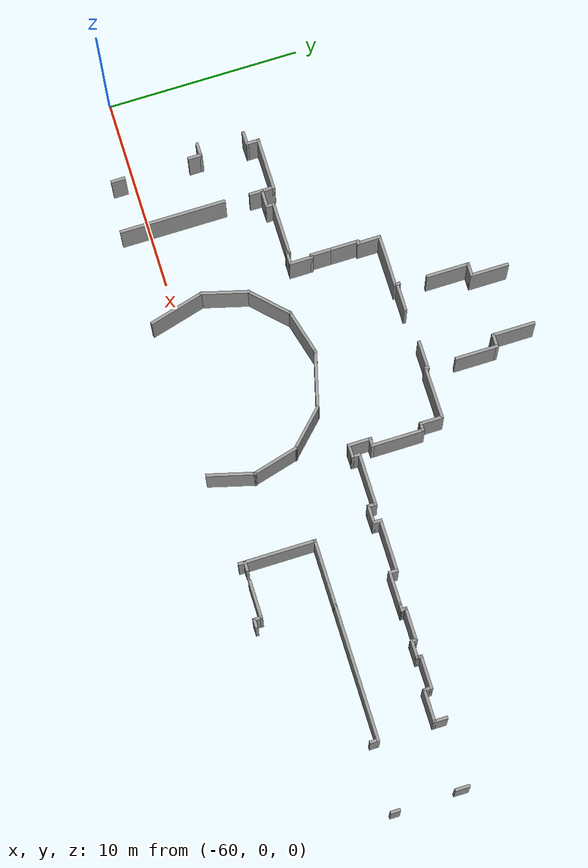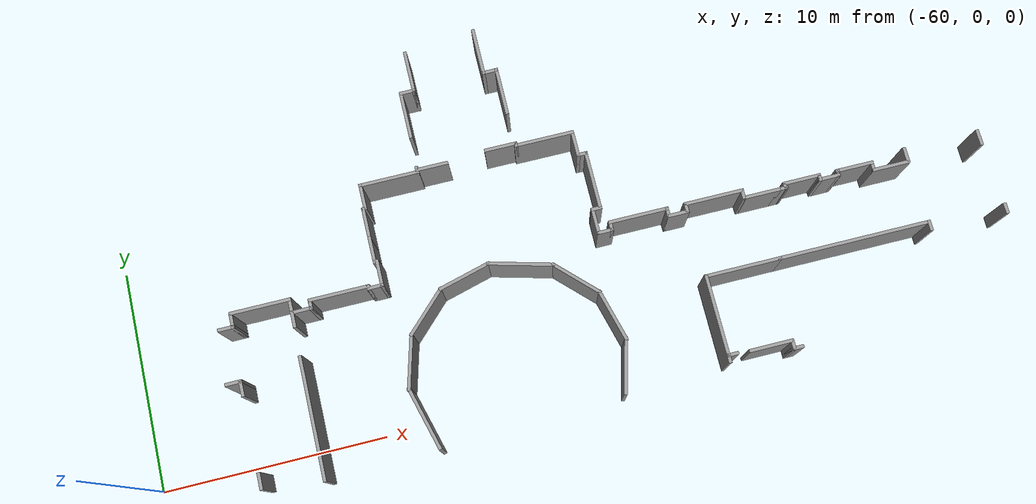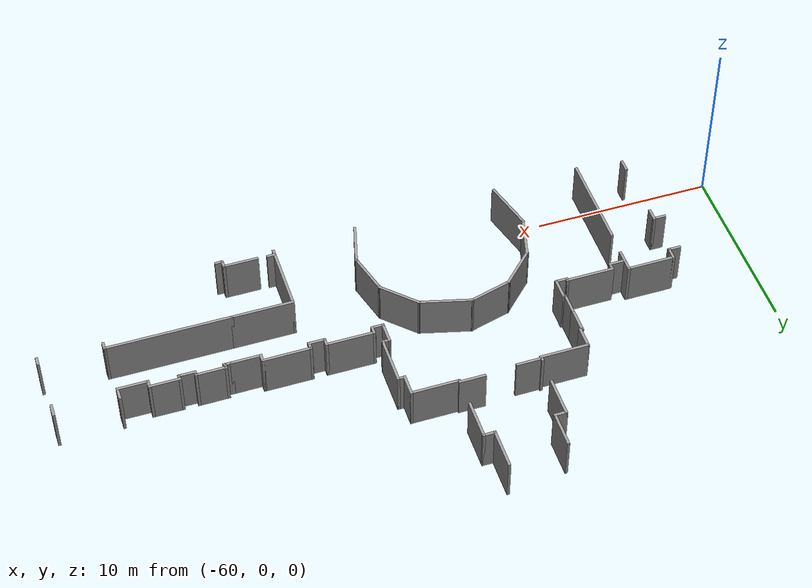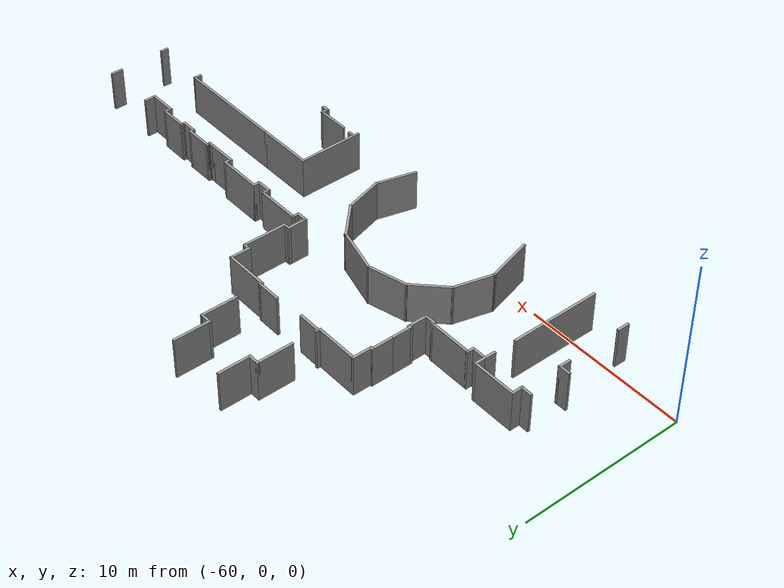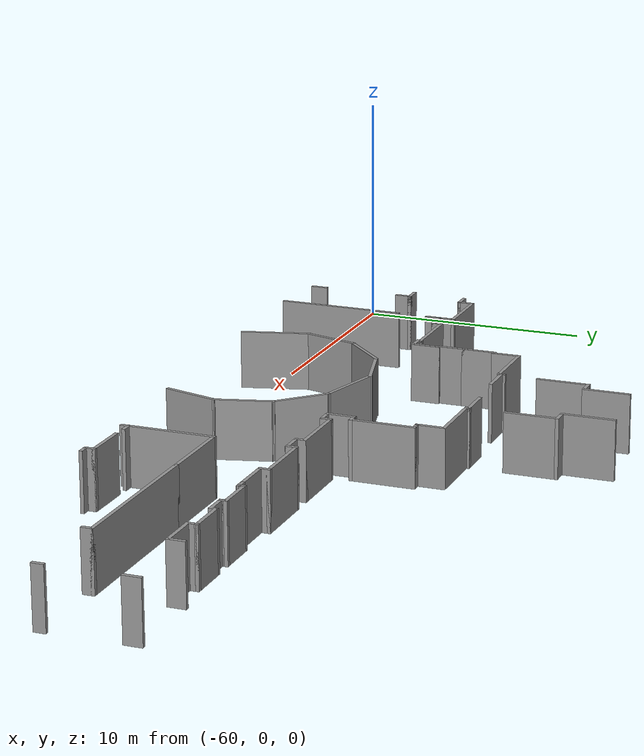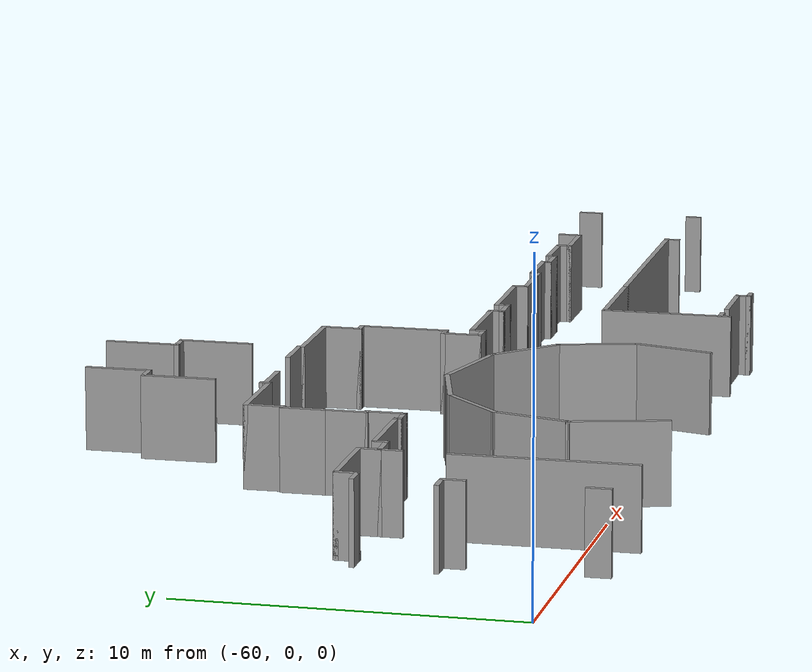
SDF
<sdf version="1.7">
 <model name="TD_n1">
  <pose>-7.14234 -2.45461 0 0 -0 0</pose>
  <link name="Wall_100">
   <collision name="Wall_100_Collision">
    <geometry><box><size>2 0.15 2.5</size></box></geometry>
    <pose>0 0 1.25 0 -0 0</pose>
   </collision>
   <visual name="Wall_100_Visual">
    <pose>0 0 1.25 0 -0 0</pose>
    <geometry><box><size>2 0.15 2.5</size></box></geometry>
    <material>
     <script><uri>file://media/materials/scripts/gazebo.material</uri><name>Gazebo/Grey</name></script>
     <ambient>1 1 1 1</ambient>
    </material>
    <meta><layer>0</layer></meta>
   </visual>
   <pose>-25.6799 1.99288 0 0 -0 3.14159</pose>
  </link>
  <link name="Wall_104">
   <collision name="Wall_104_Collision">
    <geometry><box><size>3 0.15 2.5</size></box></geometry>
    <pose>0 0 1.25 0 -0 0</pose>
   </collision>
   <visual name="Wall_104_Visual">
    <pose>0 0 1.25 0 -0 0</pose>
    <geometry><box><size>3 0.15 2.5</size></box></geometry>
    <material>
     <script><uri>file://media/materials/scripts/gazebo.material</uri><name>Gazebo/Grey</name></script>
     <ambient>1 1 1 1</ambient>
    </material>
    <meta><layer>0</layer></meta>
   </visual>
   <pose>-40.876 2.54926 0 0 -0 1.8326</pose>
  </link>
  <link name="Wall_105">
   <collision name="Wall_105_Collision">
    <geometry><box><size>2.5 0.15 2.5</size></box></geometry>
    <pose>0 0 1.25 0 -0 0</pose>
   </collision>
   <visual name="Wall_105_Visual">
    <pose>0 0 1.25 0 -0 0</pose>
    <geometry><box><size>2.5 0.15 2.5</size></box></geometry>
    <material>
     <script><uri>file://media/materials/scripts/gazebo.material</uri><name>Gazebo/Grey</name></script>
     <ambient>1 1 1 1</ambient>
    </material>
    <meta><layer>0</layer></meta>
   </visual>
   <pose>-40.9407 5.06066 0 0 -0 1.309</pose>
  </link>
  <link name="Wall_106">
   <collision name="Wall_106_Collision">
    <geometry><box><size>2.5 0.15 2.5</size></box></geometry>
    <pose>0 0 1.25 0 -0 0</pose>
   </collision>
   <visual name="Wall_106_Visual">
    <pose>0 0 1.25 0 -0 0</pose>
    <geometry><box><size>2.5 0.15 2.5</size></box></geometry>
    <material>
     <script><uri>file://media/materials/scripts/gazebo.material</uri><name>Gazebo/Grey</name></script>
     <ambient>1 1 1 1</ambient>
    </material>
    <meta><layer>0</layer></meta>
   </visual>
   <pose>-39.8057 7.02648 0 0 -0 0.785398</pose>
  </link>
  <link name="Wall_107">
   <collision name="Wall_107_Collision">
    <geometry><box><size>2.5 0.15 2.5</size></box></geometry>
    <pose>0 0 1.25 0 -0 0</pose>
   </collision>
   <visual name="Wall_107_Visual">
    <pose>0 0 1.25 0 -0 0</pose>
    <geometry><box><size>2.5 0.15 2.5</size></box></geometry>
    <material>
     <script><uri>file://media/materials/scripts/gazebo.material</uri><name>Gazebo/Grey</name></script>
     <ambient>1 1 1 1</ambient>
    </material>
    <meta><layer>0</layer></meta>
   </visual>
   <pose>-37.8399 8.16144 0 0 -0 0.261799</pose>
  </link>
  <link name="Wall_108">
   <collision name="Wall_108_Collision">
    <geometry><box><size>3 0.15 2.5</size></box></geometry>
    <pose>0 0 1.25 0 -0 0</pose>
   </collision>
   <visual name="Wall_108_Visual">
    <pose>0 0 1.25 0 -0 0</pose>
    <geometry><box><size>3 0.15 2.5</size></box></geometry>
    <material>
     <script><uri>file://media/materials/scripts/gazebo.material</uri><name>Gazebo/Grey</name></script>
     <ambient>1 1 1 1</ambient>
    </material>
    <meta><layer>0</layer></meta>
   </visual>
   <pose>-35.3285 8.09674 0 0 -0 -0.261799</pose>
  </link>
  <link name="Wall_109">
   <collision name="Wall_109_Collision">
    <geometry><box><size>2.5 0.15 2.5</size></box></geometry>
    <pose>0 0 1.25 0 -0 0</pose>
   </collision>
   <visual name="Wall_109_Visual">
    <pose>0 0 1.25 0 -0 0</pose>
    <geometry><box><size>2.5 0.15 2.5</size></box></geometry>
    <material>
     <script><uri>file://media/materials/scripts/gazebo.material</uri><name>Gazebo/Grey</name></script>
     <ambient>1 1 1 1</ambient>
    </material>
    <meta><layer>0</layer></meta>
   </visual>
   <pose>-33.1212 6.89707 0 0 -0 -0.785398</pose>
  </link>
  <link name="Wall_110">
   <collision name="Wall_110_Collision">
    <geometry><box><size>2.5 0.15 2.5</size></box></geometry>
    <pose>0 0 1.25 0 -0 0</pose>
   </collision>
   <visual name="Wall_110_Visual">
    <pose>0 0 1.25 0 -0 0</pose>
    <geometry><box><size>2.5 0.15 2.5</size></box></geometry>
    <material>
     <script><uri>file://media/materials/scripts/gazebo.material</uri><name>Gazebo/Grey</name></script>
     <ambient>1 1 1 1</ambient>
    </material>
    <meta><layer>0</layer></meta>
   </visual>
   <pose>-31.9862 4.93125 0 0 -0 -1.309</pose>
  </link>
  <link name="Wall_111">
   <collision name="Wall_111_Collision">
    <geometry><box><size>2.5 0.15 2.5</size></box></geometry>
    <pose>0 0 1.25 0 -0 0</pose>
   </collision>
   <visual name="Wall_111_Visual">
    <pose>0 0 1.25 0 -0 0</pose>
    <geometry><box><size>2.5 0.15 2.5</size></box></geometry>
    <material>
     <script><uri>file://media/materials/scripts/gazebo.material</uri><name>Gazebo/Grey</name></script>
     <ambient>1 1 1 1</ambient>
    </material>
    <meta><layer>0</layer></meta>
   </visual>
   <pose>-31.9862 2.66133 0 0 -0 -1.8326</pose>
  </link>
  <link name="Wall_115">
   <collision name="Wall_115_Collision">
    <geometry><box><size>0.75 0.15 2.5</size></box></geometry>
    <pose>0 0 1.25 0 -0 0</pose>
   </collision>
   <visual name="Wall_115_Visual">
    <pose>0 0 1.25 0 -0 0</pose>
    <geometry><box><size>0.75 0.15 2.5</size></box></geometry>
    <material>
     <script><uri>file://media/materials/scripts/gazebo.material</uri><name>Gazebo/Grey</name></script>
     <ambient>1 1 1 1</ambient>
    </material>
    <meta><layer>0</layer></meta>
   </visual>
   <pose>-45.4577 8.08504 0 0 -0 1.5708</pose>
  </link>
  <link name="Wall_116">
   <collision name="Wall_116_Collision">
    <geometry><box><size>1 0.15 2.5</size></box></geometry>
    <pose>0 0 1.25 0 -0 0</pose>
   </collision>
   <visual name="Wall_116_Visual">
    <pose>0 0 1.25 0 -0 0</pose>
    <geometry><box><size>1 0.15 2.5</size></box></geometry>
    <material>
     <script><uri>file://media/materials/scripts/gazebo.material</uri><name>Gazebo/Grey</name></script>
     <ambient>1 1 1 1</ambient>
    </material>
    <meta><layer>0</layer></meta>
   </visual>
   <pose>-45.0327 8.38504 0 0 -0 0</pose>
  </link>
  <link name="Wall_117">
   <collision name="Wall_117_Collision">
    <geometry><box><size>0.5 0.15 2.5</size></box></geometry>
    <pose>0 0 1.25 0 -0 0</pose>
   </collision>
   <visual name="Wall_117_Visual">
    <pose>0 0 1.25 0 -0 0</pose>
    <geometry><box><size>0.5 0.15 2.5</size></box></geometry>
    <material>
     <script><uri>file://media/materials/scripts/gazebo.material</uri><name>Gazebo/Grey</name></script>
     <ambient>1 1 1 1</ambient>
    </material>
    <meta><layer>0</layer></meta>
   </visual>
   <pose>-44.6077 8.56004 0 0 -0 1.5708</pose>
  </link>
  <link name="Wall_118">
   <collision name="Wall_118_Collision">
    <geometry><box><size>2.75 0.15 2.5</size></box></geometry>
    <pose>0 0 1.25 0 -0 0</pose>
   </collision>
   <visual name="Wall_118_Visual">
    <pose>0 0 1.25 0 -0 0</pose>
    <geometry><box><size>2.75 0.15 2.5</size></box></geometry>
    <material>
     <script><uri>file://media/materials/scripts/gazebo.material</uri><name>Gazebo/Grey</name></script>
     <ambient>1 1 1 1</ambient>
    </material>
    <meta><layer>0</layer></meta>
   </visual>
   <pose>-43.3077 8.73504 0 0 -0 0</pose>
  </link>
  <link name="Wall_121">
   <collision name="Wall_121_Collision">
    <geometry><box><size>0.25 0.15 2.5</size></box></geometry>
    <pose>0 0 1.25 0 -0 0</pose>
   </collision>
   <visual name="Wall_121_Visual">
    <pose>0 0 1.25 0 -0 0</pose>
    <geometry><box><size>0.25 0.15 2.5</size></box></geometry>
    <material>
     <script><uri>file://media/materials/scripts/gazebo.material</uri><name>Gazebo/Grey</name></script>
     <ambient>1 1 1 1</ambient>
    </material>
    <meta><layer>0</layer></meta>
   </visual>
   <pose>-42.0077 8.68504 0 0 -0 -1.5708</pose>
  </link>
  <link name="Wall_122">
   <collision name="Wall_122_Collision">
    <geometry><box><size>0.75 0.15 2.5</size></box></geometry>
    <pose>0 0 1.25 0 -0 0</pose>
   </collision>
   <visual name="Wall_122_Visual">
    <pose>0 0 1.25 0 -0 0</pose>
    <geometry><box><size>0.75 0.15 2.5</size></box></geometry>
    <material>
     <script><uri>file://media/materials/scripts/gazebo.material</uri><name>Gazebo/Grey</name></script>
     <ambient>1 1 1 1</ambient>
    </material>
    <meta><layer>0</layer></meta>
   </visual>
   <pose>-41.7077 8.63504 0 0 -0 0</pose>
  </link>
  <link name="Wall_123">
   <collision name="Wall_123_Collision">
    <geometry><box><size>1.25 0.15 2.5</size></box></geometry>
    <pose>0 0 1.25 0 -0 0</pose>
   </collision>
   <visual name="Wall_123_Visual">
    <pose>0 0 1.25 0 -0 0</pose>
    <geometry><box><size>1.25 0.15 2.5</size></box></geometry>
    <material>
     <script><uri>file://media/materials/scripts/gazebo.material</uri><name>Gazebo/Grey</name></script>
     <ambient>1 1 1 1</ambient>
    </material>
    <meta><layer>0</layer></meta>
   </visual>
   <pose>-41.4077 9.18504 0 0 -0 1.5708</pose>
  </link>
  <link name="Wall_124">
   <collision name="Wall_124_Collision">
    <geometry><box><size>0.25 0.15 2.5</size></box></geometry>
    <pose>0 0 1.25 0 -0 0</pose>
   </collision>
   <visual name="Wall_124_Visual">
    <pose>0 0 1.25 0 -0 0</pose>
    <geometry><box><size>0.25 0.15 2.5</size></box></geometry>
    <material>
     <script><uri>file://media/materials/scripts/gazebo.material</uri><name>Gazebo/Grey</name></script>
     <ambient>1 1 1 1</ambient>
    </material>
    <meta><layer>0</layer></meta>
   </visual>
   <pose>-41.4577 9.73504 0 0 -0 3.14159</pose>
  </link>
  <link name="Wall_125">
   <collision name="Wall_125_Collision">
    <geometry><box><size>1.25 0.15 2.5</size></box></geometry>
    <pose>0 0 1.25 0 -0 0</pose>
   </collision>
   <visual name="Wall_125_Visual">
    <pose>0 0 1.25 0 -0 0</pose>
    <geometry><box><size>1.25 0.15 2.5</size></box></geometry>
    <material>
     <script><uri>file://media/materials/scripts/gazebo.material</uri><name>Gazebo/Grey</name></script>
     <ambient>1 1 1 1</ambient>
    </material>
    <meta><layer>0</layer></meta>
   </visual>
   <pose>-41.5077 10.285 0 0 -0 1.5708</pose>
  </link>
  <link name="Wall_127">
   <collision name="Wall_127_Collision">
    <geometry><box><size>1.5 0.15 2.5</size></box></geometry>
    <pose>0 0 1.25 0 -0 0</pose>
   </collision>
   <visual name="Wall_127_Visual">
    <pose>0 0 1.25 0 -0 0</pose>
    <geometry><box><size>1.5 0.15 2.5</size></box></geometry>
    <material>
     <script><uri>file://media/materials/scripts/gazebo.material</uri><name>Gazebo/Grey</name></script>
     <ambient>1 1 1 1</ambient>
    </material>
    <meta><layer>0</layer></meta>
   </visual>
   <pose>-41.5077 11.51 0 0 -0 1.5708</pose>
  </link>
  <link name="Wall_128">
   <collision name="Wall_128_Collision">
    <geometry><box><size>0.25 0.15 2.5</size></box></geometry>
    <pose>0 0 1.25 0 -0 0</pose>
   </collision>
   <visual name="Wall_128_Visual">
    <pose>0 0 1.25 0 -0 0</pose>
    <geometry><box><size>0.25 0.15 2.5</size></box></geometry>
    <material>
     <script><uri>file://media/materials/scripts/gazebo.material</uri><name>Gazebo/Grey</name></script>
     <ambient>1 1 1 1</ambient>
    </material>
    <meta><layer>0</layer></meta>
   </visual>
   <pose>-41.4577 12.185 0 0 -0 0</pose>
  </link>
  <link name="Wall_129">
   <collision name="Wall_129_Collision">
    <geometry><box><size>1.25 0.15 2.5</size></box></geometry>
    <pose>0 0 1.25 0 -0 0</pose>
   </collision>
   <visual name="Wall_129_Visual">
    <pose>0 0 1.25 0 -0 0</pose>
    <geometry><box><size>1.25 0.15 2.5</size></box></geometry>
    <material>
     <script><uri>file://media/materials/scripts/gazebo.material</uri><name>Gazebo/Grey</name></script>
     <ambient>1 1 1 1</ambient>
    </material>
    <meta><layer>0</layer></meta>
   </visual>
   <pose>-41.4077 12.735 0 0 -0 1.5708</pose>
  </link>
  <link name="Wall_130">
   <collision name="Wall_130_Collision">
    <geometry><box><size>2.75 0.15 2.5</size></box></geometry>
    <pose>0 0 1.25 0 -0 0</pose>
   </collision>
   <visual name="Wall_130_Visual">
    <pose>0 0 1.25 0 -0 0</pose>
    <geometry><box><size>2.75 0.15 2.5</size></box></geometry>
    <material>
     <script><uri>file://media/materials/scripts/gazebo.material</uri><name>Gazebo/Grey</name></script>
     <ambient>1 1 1 1</ambient>
    </material>
    <meta><layer>0</layer></meta>
   </visual>
   <pose>-40.1077 13.285 0 0 -0 0</pose>
  </link>
  <link name="Wall_131">
   <collision name="Wall_131_Collision">
    <geometry><box><size>0.25 0.15 2.5</size></box></geometry>
    <pose>0 0 1.25 0 -0 0</pose>
   </collision>
   <visual name="Wall_131_Visual">
    <pose>0 0 1.25 0 -0 0</pose>
    <geometry><box><size>0.25 0.15 2.5</size></box></geometry>
    <material>
     <script><uri>file://media/materials/scripts/gazebo.material</uri><name>Gazebo/Grey</name></script>
     <ambient>1 1 1 1</ambient>
    </material>
    <meta><layer>0</layer></meta>
   </visual>
   <pose>-38.8077 13.335 0 0 -0 1.5708</pose>
  </link>
  <link name="Wall_132">
   <collision name="Wall_132_Collision">
    <geometry><box><size>1.5 0.15 2.5</size></box></geometry>
    <pose>0 0 1.25 0 -0 0</pose>
   </collision>
   <visual name="Wall_132_Visual">
    <pose>0 0 1.25 0 -0 0</pose>
    <geometry><box><size>1.5 0.15 2.5</size></box></geometry>
    <material>
     <script><uri>file://media/materials/scripts/gazebo.material</uri><name>Gazebo/Grey</name></script>
     <ambient>1 1 1 1</ambient>
    </material>
    <meta><layer>0</layer></meta>
   </visual>
   <pose>-38.1327 13.385 0 0 -0 0</pose>
  </link>
  <link name="Wall_134">
   <collision name="Wall_134_Collision">
    <geometry><box><size>1.5 0.15 2.5</size></box></geometry>
    <pose>0 0 1.25 0 -0 0</pose>
   </collision>
   <visual name="Wall_134_Visual">
    <pose>0 0 1.25 0 -0 0</pose>
    <geometry><box><size>1.5 0.15 2.5</size></box></geometry>
    <material>
     <script><uri>file://media/materials/scripts/gazebo.material</uri><name>Gazebo/Grey</name></script>
     <ambient>1 1 1 1</ambient>
    </material>
    <meta><layer>0</layer></meta>
   </visual>
   <pose>-34.9371 13.5314 0 0 -0 0</pose>
  </link>
  <link name="Wall_135">
   <collision name="Wall_135_Collision">
    <geometry><box><size>0.25 0.15 2.5</size></box></geometry>
    <pose>0 0 1.25 0 -0 0</pose>
   </collision>
   <visual name="Wall_135_Visual">
    <pose>0 0 1.25 0 -0 0</pose>
    <geometry><box><size>0.25 0.15 2.5</size></box></geometry>
    <material>
     <script><uri>file://media/materials/scripts/gazebo.material</uri><name>Gazebo/Grey</name></script>
     <ambient>1 1 1 1</ambient>
    </material>
    <meta><layer>0</layer></meta>
   </visual>
   <pose>-34.2621 13.4814 0 0 -0 -1.5708</pose>
  </link>
  <link name="Wall_136">
   <collision name="Wall_136_Collision">
    <geometry><box><size>2.75 0.15 2.5</size></box></geometry>
    <pose>0 0 1.25 0 -0 0</pose>
   </collision>
   <visual name="Wall_136_Visual">
    <pose>0 0 1.25 0 -0 0</pose>
    <geometry><box><size>2.75 0.15 2.5</size></box></geometry>
    <material>
     <script><uri>file://media/materials/scripts/gazebo.material</uri><name>Gazebo/Grey</name></script>
     <ambient>1 1 1 1</ambient>
    </material>
    <meta><layer>0</layer></meta>
   </visual>
   <pose>-32.9621 13.4314 0 0 -0 0</pose>
  </link>
  <link name="Wall_137">
   <collision name="Wall_137_Collision">
    <geometry><box><size>1.25 0.15 2.5</size></box></geometry>
    <pose>0 0 1.25 0 -0 0</pose>
   </collision>
   <visual name="Wall_137_Visual">
    <pose>0 0 1.25 0 -0 0</pose>
    <geometry><box><size>1.25 0.15 2.5</size></box></geometry>
    <material>
     <script><uri>file://media/materials/scripts/gazebo.material</uri><name>Gazebo/Grey</name></script>
     <ambient>1 1 1 1</ambient>
    </material>
    <meta><layer>0</layer></meta>
   </visual>
   <pose>-31.6621 12.8814 0 0 -0 -1.5708</pose>
  </link>
  <link name="Wall_138">
   <collision name="Wall_138_Collision">
    <geometry><box><size>0.5 0.15 2.5</size></box></geometry>
    <pose>0 0 1.25 0 -0 0</pose>
   </collision>
   <visual name="Wall_138_Visual">
    <pose>0 0 1.25 0 -0 0</pose>
    <geometry><box><size>0.5 0.15 2.5</size></box></geometry>
    <material>
     <script><uri>file://media/materials/scripts/gazebo.material</uri><name>Gazebo/Grey</name></script>
     <ambient>1 1 1 1</ambient>
    </material>
    <meta><layer>0</layer></meta>
   </visual>
   <pose>-31.4871 12.3314 0 0 -0 0</pose>
  </link>
  <link name="Wall_139">
   <collision name="Wall_139_Collision">
    <geometry><box><size>2.75 0.15 2.5</size></box></geometry>
    <pose>0 0 1.25 0 -0 0</pose>
   </collision>
   <visual name="Wall_139_Visual">
    <pose>0 0 1.25 0 -0 0</pose>
    <geometry><box><size>2.75 0.15 2.5</size></box></geometry>
    <material>
     <script><uri>file://media/materials/scripts/gazebo.material</uri><name>Gazebo/Grey</name></script>
     <ambient>1 1 1 1</ambient>
    </material>
    <meta><layer>0</layer></meta>
   </visual>
   <pose>-31.3121 11.0314 0 0 -0 -1.5708</pose>
  </link>
  <link name="Wall_141">
   <collision name="Wall_141_Collision">
    <geometry><box><size>0.5 0.15 2.5</size></box></geometry>
    <pose>0 0 1.25 0 -0 0</pose>
   </collision>
   <visual name="Wall_141_Visual">
    <pose>0 0 1.25 0 -0 0</pose>
    <geometry><box><size>0.5 0.15 2.5</size></box></geometry>
    <material>
     <script><uri>file://media/materials/scripts/gazebo.material</uri><name>Gazebo/Grey</name></script>
     <ambient>1 1 1 1</ambient>
    </material>
    <meta><layer>0</layer></meta>
   </visual>
   <pose>-31.4871 9.73136 0 0 -0 3.14159</pose>
  </link>
  <link name="Wall_142">
   <collision name="Wall_142_Collision">
    <geometry><box><size>1.25 0.15 2.5</size></box></geometry>
    <pose>0 0 1.25 0 -0 0</pose>
   </collision>
   <visual name="Wall_142_Visual">
    <pose>0 0 1.25 0 -0 0</pose>
    <geometry><box><size>1.25 0.15 2.5</size></box></geometry>
    <material>
     <script><uri>file://media/materials/scripts/gazebo.material</uri><name>Gazebo/Grey</name></script>
     <ambient>1 1 1 1</ambient>
    </material>
    <meta><layer>0</layer></meta>
   </visual>
   <pose>-31.6621 9.18136 0 0 -0 -1.5708</pose>
  </link>
  <link name="Wall_143">
   <collision name="Wall_143_Collision">
    <geometry><box><size>0.75 0.15 2.5</size></box></geometry>
    <pose>0 0 1.25 0 -0 0</pose>
   </collision>
   <visual name="Wall_143_Visual">
    <pose>0 0 1.25 0 -0 0</pose>
    <geometry><box><size>0.75 0.15 2.5</size></box></geometry>
    <material>
     <script><uri>file://media/materials/scripts/gazebo.material</uri><name>Gazebo/Grey</name></script>
     <ambient>1 1 1 1</ambient>
    </material>
    <meta><layer>0</layer></meta>
   </visual>
   <pose>-31.3621 8.63136 0 0 -0 0</pose>
  </link>
  <link name="Wall_144">
   <collision name="Wall_144_Collision">
    <geometry><box><size>0.5 0.15 2.5</size></box></geometry>
    <pose>0 0 1.25 0 -0 0</pose>
   </collision>
   <visual name="Wall_144_Visual">
    <pose>0 0 1.25 0 -0 0</pose>
    <geometry><box><size>0.5 0.15 2.5</size></box></geometry>
    <material>
     <script><uri>file://media/materials/scripts/gazebo.material</uri><name>Gazebo/Grey</name></script>
     <ambient>1 1 1 1</ambient>
    </material>
    <meta><layer>0</layer></meta>
   </visual>
   <pose>-31.0621 8.80636 0 0 -0 1.5708</pose>
  </link>
  <link name="Wall_145">
   <collision name="Wall_145_Collision">
    <geometry><box><size>2.75 0.15 2.5</size></box></geometry>
    <pose>0 0 1.25 0 -0 0</pose>
   </collision>
   <visual name="Wall_145_Visual">
    <pose>0 0 1.25 0 -0 0</pose>
    <geometry><box><size>2.75 0.15 2.5</size></box></geometry>
    <material>
     <script><uri>file://media/materials/scripts/gazebo.material</uri><name>Gazebo/Grey</name></script>
     <ambient>1 1 1 1</ambient>
    </material>
    <meta><layer>0</layer></meta>
   </visual>
   <pose>-29.7621 8.98136 0 0 -0 0</pose>
  </link>
  <link name="Wall_146">
   <collision name="Wall_146_Collision">
    <geometry><box><size>0.5 0.15 2.5</size></box></geometry>
    <pose>0 0 1.25 0 -0 0</pose>
   </collision>
   <visual name="Wall_146_Visual">
    <pose>0 0 1.25 0 -0 0</pose>
    <geometry><box><size>0.5 0.15 2.5</size></box></geometry>
    <material>
     <script><uri>file://media/materials/scripts/gazebo.material</uri><name>Gazebo/Grey</name></script>
     <ambient>1 1 1 1</ambient>
    </material>
    <meta><layer>0</layer></meta>
   </visual>
   <pose>-28.4621 8.80636 0 0 -0 -1.5708</pose>
  </link>
  <link name="Wall_147">
   <collision name="Wall_147_Collision">
    <geometry><box><size>1 0.15 2.5</size></box></geometry>
    <pose>0 0 1.25 0 -0 0</pose>
   </collision>
   <visual name="Wall_147_Visual">
    <pose>0 0 1.25 0 -0 0</pose>
    <geometry><box><size>1 0.15 2.5</size></box></geometry>
    <material>
     <script><uri>file://media/materials/scripts/gazebo.material</uri><name>Gazebo/Grey</name></script>
     <ambient>1 1 1 1</ambient>
    </material>
    <meta><layer>0</layer></meta>
   </visual>
   <pose>-28.0371 8.63136 0 0 -0 0</pose>
  </link>
  <link name="Wall_148">
   <collision name="Wall_148_Collision">
    <geometry><box><size>0.5 0.15 2.5</size></box></geometry>
    <pose>0 0 1.25 0 -0 0</pose>
   </collision>
   <visual name="Wall_148_Visual">
    <pose>0 0 1.25 0 -0 0</pose>
    <geometry><box><size>0.5 0.15 2.5</size></box></geometry>
    <material>
     <script><uri>file://media/materials/scripts/gazebo.material</uri><name>Gazebo/Grey</name></script>
     <ambient>1 1 1 1</ambient>
    </material>
    <meta><layer>0</layer></meta>
   </visual>
   <pose>-27.6121 8.80636 0 0 -0 1.5708</pose>
  </link>
  <link name="Wall_149">
   <collision name="Wall_149_Collision">
    <geometry><box><size>2.75 0.15 2.5</size></box></geometry>
    <pose>0 0 1.25 0 -0 0</pose>
   </collision>
   <visual name="Wall_149_Visual">
    <pose>0 0 1.25 0 -0 0</pose>
    <geometry><box><size>2.75 0.15 2.5</size></box></geometry>
    <material>
     <script><uri>file://media/materials/scripts/gazebo.material</uri><name>Gazebo/Grey</name></script>
     <ambient>1 1 1 1</ambient>
    </material>
    <meta><layer>0</layer></meta>
   </visual>
   <pose>-26.3121 8.98136 0 0 -0 0</pose>
  </link>
  <link name="Wall_150">
   <collision name="Wall_150_Collision">
    <geometry><box><size>0.5 0.15 2.5</size></box></geometry>
    <pose>0 0 1.25 0 -0 0</pose>
   </collision>
   <visual name="Wall_150_Visual">
    <pose>0 0 1.25 0 -0 0</pose>
    <geometry><box><size>0.5 0.15 2.5</size></box></geometry>
    <material>
     <script><uri>file://media/materials/scripts/gazebo.material</uri><name>Gazebo/Grey</name></script>
     <ambient>1 1 1 1</ambient>
    </material>
    <meta><layer>0</layer></meta>
   </visual>
   <pose>-25.0121 8.80636 0 0 -0 -1.5708</pose>
  </link>
  <link name="Wall_151">
   <collision name="Wall_151_Collision">
    <geometry><box><size>1.75 0.15 2.5</size></box></geometry>
    <pose>0 0 1.25 0 -0 0</pose>
   </collision>
   <visual name="Wall_151_Visual">
    <pose>0 0 1.25 0 -0 0</pose>
    <geometry><box><size>1.75 0.15 2.5</size></box></geometry>
    <material>
     <script><uri>file://media/materials/scripts/gazebo.material</uri><name>Gazebo/Grey</name></script>
     <ambient>1 1 1 1</ambient>
    </material>
    <meta><layer>0</layer></meta>
   </visual>
   <pose>-24.2121 8.63136 0 0 -0 0</pose>
  </link>
  <link name="Wall_152">
   <collision name="Wall_152_Collision">
    <geometry><box><size>0.5 0.15 2.5</size></box></geometry>
    <pose>0 0 1.25 0 -0 0</pose>
   </collision>
   <visual name="Wall_152_Visual">
    <pose>0 0 1.25 0 -0 0</pose>
    <geometry><box><size>0.5 0.15 2.5</size></box></geometry>
    <material>
     <script><uri>file://media/materials/scripts/gazebo.material</uri><name>Gazebo/Grey</name></script>
     <ambient>1 1 1 1</ambient>
    </material>
    <meta><layer>0</layer></meta>
   </visual>
   <pose>-23.2371 8.63136 0 0 -0 0</pose>
  </link>
  <link name="Wall_153">
   <collision name="Wall_153_Collision">
    <geometry><box><size>0.25 0.15 2.5</size></box></geometry>
    <pose>0 0 1.25 0 -0 0</pose>
   </collision>
   <visual name="Wall_153_Visual">
    <pose>0 0 1.25 0 -0 0</pose>
    <geometry><box><size>0.25 0.15 2.5</size></box></geometry>
    <material>
     <script><uri>file://media/materials/scripts/gazebo.material</uri><name>Gazebo/Grey</name></script>
     <ambient>1 1 1 1</ambient>
    </material>
    <meta><layer>0</layer></meta>
   </visual>
   <pose>-23.0751 8.67966 0 0 -0 1.8326</pose>
  </link>
  <link name="Wall_154">
   <collision name="Wall_154_Collision">
    <geometry><box><size>0.25 0.15 2.5</size></box></geometry>
    <pose>0 0 1.25 0 -0 0</pose>
   </collision>
   <visual name="Wall_154_Visual">
    <pose>0 0 1.25 0 -0 0</pose>
    <geometry><box><size>0.25 0.15 2.5</size></box></geometry>
    <material>
     <script><uri>file://media/materials/scripts/gazebo.material</uri><name>Gazebo/Grey</name></script>
     <ambient>1 1 1 1</ambient>
    </material>
    <meta><layer>0</layer></meta>
   </visual>
   <pose>-23.088 8.77796 0 0 -0 1.5708</pose>
  </link>
  <link name="Wall_155">
   <collision name="Wall_155_Collision">
    <geometry><box><size>1.75 0.15 2.5</size></box></geometry>
    <pose>0 0 1.25 0 -0 0</pose>
   </collision>
   <visual name="Wall_155_Visual">
    <pose>0 0 1.25 0 -0 0</pose>
    <geometry><box><size>1.75 0.15 2.5</size></box></geometry>
    <material>
     <script><uri>file://media/materials/scripts/gazebo.material</uri><name>Gazebo/Grey</name></script>
     <ambient>1 1 1 1</ambient>
    </material>
    <meta><layer>0</layer></meta>
   </visual>
   <pose>-22.288 8.82795 0 0 -0 0</pose>
  </link>
  <link name="Wall_157">
   <collision name="Wall_157_Collision">
    <geometry><box><size>0.25 0.15 2.5</size></box></geometry>
    <pose>0 0 1.25 0 -0 0</pose>
   </collision>
   <visual name="Wall_157_Visual">
    <pose>0 0 1.25 0 -0 0</pose>
    <geometry><box><size>0.25 0.15 2.5</size></box></geometry>
    <material>
     <script><uri>file://media/materials/scripts/gazebo.material</uri><name>Gazebo/Grey</name></script>
     <ambient>1 1 1 1</ambient>
    </material>
    <meta><layer>0</layer></meta>
   </visual>
   <pose>-38.8077 13.435 0 0 -0 1.5708</pose>
  </link>
  <link name="Wall_159">
   <collision name="Wall_159_Collision">
    <geometry><box><size>2.25 0.15 2.5</size></box></geometry>
    <pose>0 0 1.25 0 -0 0</pose>
   </collision>
   <visual name="Wall_159_Visual">
    <pose>0 0 1.25 0 -0 0</pose>
    <geometry><box><size>2.25 0.15 2.5</size></box></geometry>
    <material>
     <script><uri>file://media/materials/scripts/gazebo.material</uri><name>Gazebo/Grey</name></script>
     <ambient>1 1 1 1</ambient>
    </material>
    <meta><layer>0</layer></meta>
   </visual>
   <pose>-38.7414 16.0283 0 0 -0 1.5708</pose>
  </link>
  <link name="Wall_160">
   <collision name="Wall_160_Collision">
    <geometry><box><size>0.75 0.15 2.5</size></box></geometry>
    <pose>0 0 1.25 0 -0 0</pose>
   </collision>
   <visual name="Wall_160_Visual">
    <pose>0 0 1.25 0 -0 0</pose>
    <geometry><box><size>0.75 0.15 2.5</size></box></geometry>
    <material>
     <script><uri>file://media/materials/scripts/gazebo.material</uri><name>Gazebo/Grey</name></script>
     <ambient>1 1 1 1</ambient>
    </material>
    <meta><layer>0</layer></meta>
   </visual>
   <pose>-38.4414 17.0783 0 0 -0 0</pose>
  </link>
  <link name="Wall_161">
   <collision name="Wall_161_Collision">
    <geometry><box><size>2 0.15 2.5</size></box></geometry>
    <pose>0 0 1.25 0 -0 0</pose>
   </collision>
   <visual name="Wall_161_Visual">
    <pose>0 0 1.25 0 -0 0</pose>
    <geometry><box><size>2 0.15 2.5</size></box></geometry>
    <material>
     <script><uri>file://media/materials/scripts/gazebo.material</uri><name>Gazebo/Grey</name></script>
     <ambient>1 1 1 1</ambient>
    </material>
    <meta><layer>0</layer></meta>
   </visual>
   <pose>-38.1414 18.0033 0 0 -0 1.5708</pose>
  </link>
  <link name="Wall_163">
   <collision name="Wall_163_Collision">
    <geometry><box><size>2.25 0.15 2.5</size></box></geometry>
    <pose>0 0 1.25 0 -0 0</pose>
   </collision>
   <visual name="Wall_163_Visual">
    <pose>0 0 1.25 0 -0 0</pose>
    <geometry><box><size>2.25 0.15 2.5</size></box></geometry>
    <material>
     <script><uri>file://media/materials/scripts/gazebo.material</uri><name>Gazebo/Grey</name></script>
     <ambient>1 1 1 1</ambient>
    </material>
    <meta><layer>0</layer></meta>
   </visual>
   <pose>-34.2815 16.0983 0 0 -0 1.5708</pose>
  </link>
  <link name="Wall_164">
   <collision name="Wall_164_Collision">
    <geometry><box><size>0.75 0.15 2.5</size></box></geometry>
    <pose>0 0 1.25 0 -0 0</pose>
   </collision>
   <visual name="Wall_164_Visual">
    <pose>0 0 1.25 0 -0 0</pose>
    <geometry><box><size>0.75 0.15 2.5</size></box></geometry>
    <material>
     <script><uri>file://media/materials/scripts/gazebo.material</uri><name>Gazebo/Grey</name></script>
     <ambient>1 1 1 1</ambient>
    </material>
    <meta><layer>0</layer></meta>
   </visual>
   <pose>-34.5815 17.1483 0 0 -0 3.14159</pose>
  </link>
  <link name="Wall_165">
   <collision name="Wall_165_Collision">
    <geometry><box><size>2.25 0.15 2.5</size></box></geometry>
    <pose>0 0 1.25 0 -0 0</pose>
   </collision>
   <visual name="Wall_165_Visual">
    <pose>0 0 1.25 0 -0 0</pose>
    <geometry><box><size>2.25 0.15 2.5</size></box></geometry>
    <material>
     <script><uri>file://media/materials/scripts/gazebo.material</uri><name>Gazebo/Grey</name></script>
     <ambient>1 1 1 1</ambient>
    </material>
    <meta><layer>0</layer></meta>
   </visual>
   <pose>-34.8815 18.1983 0 0 -0 1.5708</pose>
  </link>
  <link name="Wall_167">
   <collision name="Wall_167_Collision">
    <geometry><box><size>0.75 0.15 2.5</size></box></geometry>
    <pose>0 0 1.25 0 -0 0</pose>
   </collision>
   <visual name="Wall_167_Visual">
    <pose>0 0 1.25 0 -0 0</pose>
    <geometry><box><size>0.75 0.15 2.5</size></box></geometry>
    <material>
     <script><uri>file://media/materials/scripts/gazebo.material</uri><name>Gazebo/Grey</name></script>
     <ambient>1 1 1 1</ambient>
    </material>
    <meta><layer>0</layer></meta>
   </visual>
   <pose>-45.4577 8.68504 0 0 -0 1.5708</pose>
  </link>
  <link name="Wall_168">
   <collision name="Wall_168_Collision">
    <geometry><box><size>2.75 0.15 2.5</size></box></geometry>
    <pose>0 0 1.25 0 -0 0</pose>
   </collision>
   <visual name="Wall_168_Visual">
    <pose>0 0 1.25 0 -0 0</pose>
    <geometry><box><size>2.75 0.15 2.5</size></box></geometry>
    <material>
     <script><uri>file://media/materials/scripts/gazebo.material</uri><name>Gazebo/Grey</name></script>
     <ambient>1 1 1 1</ambient>
    </material>
    <meta><layer>0</layer></meta>
   </visual>
   <pose>-46.7577 8.98504 0 0 -0 3.14159</pose>
  </link>
  <link name="Wall_169">
   <collision name="Wall_169_Collision">
    <geometry><box><size>0.75 0.15 2.5</size></box></geometry>
    <pose>0 0 1.25 0 -0 0</pose>
   </collision>
   <visual name="Wall_169_Visual">
    <pose>0 0 1.25 0 -0 0</pose>
    <geometry><box><size>0.75 0.15 2.5</size></box></geometry>
    <material>
     <script><uri>file://media/materials/scripts/gazebo.material</uri><name>Gazebo/Grey</name></script>
     <ambient>1 1 1 1</ambient>
    </material>
    <meta><layer>0</layer></meta>
   </visual>
   <pose>-48.0577 8.68504 0 0 -0 -1.5708</pose>
  </link>
  <link name="Wall_171">
   <collision name="Wall_171_Collision">
    <geometry><box><size>0.75 0.15 2.5</size></box></geometry>
    <pose>0 0 1.25 0 -0 0</pose>
   </collision>
   <visual name="Wall_171_Visual">
    <pose>0 0 1.25 0 -0 0</pose>
    <geometry><box><size>0.75 0.15 2.5</size></box></geometry>
    <material>
     <script><uri>file://media/materials/scripts/gazebo.material</uri><name>Gazebo/Grey</name></script>
     <ambient>1 1 1 1</ambient>
    </material>
    <meta><layer>0</layer></meta>
   </visual>
   <pose>-48.3577 8.38504 0 0 -0 3.14159</pose>
  </link>
  <link name="Wall_173">
   <collision name="Wall_173_Collision">
    <geometry><box><size>0.75 0.15 2.5</size></box></geometry>
    <pose>0 0 1.25 0 -0 0</pose>
   </collision>
   <visual name="Wall_173_Visual">
    <pose>0 0 1.25 0 -0 0</pose>
    <geometry><box><size>0.75 0.15 2.5</size></box></geometry>
    <material>
     <script><uri>file://media/materials/scripts/gazebo.material</uri><name>Gazebo/Grey</name></script>
     <ambient>1 1 1 1</ambient>
    </material>
    <meta><layer>0</layer></meta>
   </visual>
   <pose>-48.478 5.98707 0 0 -0 0</pose>
  </link>
  <link name="Wall_174">
   <collision name="Wall_174_Collision">
    <geometry><box><size>0.75 0.15 2.5</size></box></geometry>
    <pose>0 0 1.25 0 -0 0</pose>
   </collision>
   <visual name="Wall_174_Visual">
    <pose>0 0 1.25 0 -0 0</pose>
    <geometry><box><size>0.75 0.15 2.5</size></box></geometry>
    <material>
     <script><uri>file://media/materials/scripts/gazebo.material</uri><name>Gazebo/Grey</name></script>
     <ambient>1 1 1 1</ambient>
    </material>
    <meta><layer>0</layer></meta>
   </visual>
   <pose>-48.178 5.68707 0 0 -0 -1.5708</pose>
  </link>
  <link name="Wall_176">
   <collision name="Wall_176_Collision">
    <geometry><box><size>0.75 0.15 2.5</size></box></geometry>
    <pose>0 0 1.25 0 -0 0</pose>
   </collision>
   <visual name="Wall_176_Visual">
    <pose>0 0 1.25 0 -0 0</pose>
    <geometry><box><size>0.75 0.15 2.5</size></box></geometry>
    <material>
     <script><uri>file://media/materials/scripts/gazebo.material</uri><name>Gazebo/Grey</name></script>
     <ambient>1 1 1 1</ambient>
    </material>
    <meta><layer>0</layer></meta>
   </visual>
   <pose>-48.1484 1.64687 0 0 -0 -1.5708</pose>
  </link>
  <link name="Wall_191">
   <collision name="Wall_191_Collision">
    <geometry><box><size>0.25 0.15 2.5</size></box></geometry>
    <pose>0 0 1.25 0 -0 0</pose>
   </collision>
   <visual name="Wall_191_Visual">
    <pose>0 0 1.25 0 -0 0</pose>
    <geometry><box><size>0.25 0.15 2.5</size></box></geometry>
    <material>
     <script><uri>file://media/materials/scripts/gazebo.material</uri><name>Gazebo/Grey</name></script>
     <ambient>1 1 1 1</ambient>
    </material>
    <meta><layer>0</layer></meta>
   </visual>
   <pose>-21.488 8.77796 0 0 -0 -1.5708</pose>
  </link>
  <link name="Wall_192">
   <collision name="Wall_192_Collision">
    <geometry><box><size>0.25 0.15 2.5</size></box></geometry>
    <pose>0 0 1.25 0 -0 0</pose>
   </collision>
   <visual name="Wall_192_Visual">
    <pose>0 0 1.25 0 -0 0</pose>
    <geometry><box><size>0.25 0.15 2.5</size></box></geometry>
    <material>
     <script><uri>file://media/materials/scripts/gazebo.material</uri><name>Gazebo/Grey</name></script>
     <ambient>1 1 1 1</ambient>
    </material>
    <meta><layer>0</layer></meta>
   </visual>
   <pose>-21.488 8.67796 0 0 -0 -1.5708</pose>
  </link>
  <link name="Wall_193">
   <collision name="Wall_193_Collision">
    <geometry><box><size>1 0.15 2.5</size></box></geometry>
    <pose>0 0 1.25 0 -0 0</pose>
   </collision>
   <visual name="Wall_193_Visual">
    <pose>0 0 1.25 0 -0 0</pose>
    <geometry><box><size>1 0.15 2.5</size></box></geometry>
    <material>
     <script><uri>file://media/materials/scripts/gazebo.material</uri><name>Gazebo/Grey</name></script>
     <ambient>1 1 1 1</ambient>
    </material>
    <meta><layer>0</layer></meta>
   </visual>
   <pose>-21.063 8.62796 0 0 -0 0</pose>
  </link>
  <link name="Wall_194">
   <collision name="Wall_194_Collision">
    <geometry><box><size>0.25 0.15 2.5</size></box></geometry>
    <pose>0 0 1.25 0 -0 0</pose>
   </collision>
   <visual name="Wall_194_Visual">
    <pose>0 0 1.25 0 -0 0</pose>
    <geometry><box><size>0.25 0.15 2.5</size></box></geometry>
    <material>
     <script><uri>file://media/materials/scripts/gazebo.material</uri><name>Gazebo/Grey</name></script>
     <ambient>1 1 1 1</ambient>
    </material>
    <meta><layer>0</layer></meta>
   </visual>
   <pose>-20.638 8.67796 0 0 -0 1.5708</pose>
  </link>
  <link name="Wall_195">
   <collision name="Wall_195_Collision">
    <geometry><box><size>0.25 0.15 2.5</size></box></geometry>
    <pose>0 0 1.25 0 -0 0</pose>
   </collision>
   <visual name="Wall_195_Visual">
    <pose>0 0 1.25 0 -0 0</pose>
    <geometry><box><size>0.25 0.15 2.5</size></box></geometry>
    <material>
     <script><uri>file://media/materials/scripts/gazebo.material</uri><name>Gazebo/Grey</name></script>
     <ambient>1 1 1 1</ambient>
    </material>
    <meta><layer>0</layer></meta>
   </visual>
   <pose>-20.638 8.77796 0 0 -0 1.5708</pose>
  </link>
  <link name="Wall_196">
   <collision name="Wall_196_Collision">
    <geometry><box><size>1.75 0.15 2.5</size></box></geometry>
    <pose>0 0 1.25 0 -0 0</pose>
   </collision>
   <visual name="Wall_196_Visual">
    <pose>0 0 1.25 0 -0 0</pose>
    <geometry><box><size>1.75 0.15 2.5</size></box></geometry>
    <material>
     <script><uri>file://media/materials/scripts/gazebo.material</uri><name>Gazebo/Grey</name></script>
     <ambient>1 1 1 1</ambient>
    </material>
    <meta><layer>0</layer></meta>
   </visual>
   <pose>-19.838 8.82795 0 0 -0 0</pose>
  </link>
  <link name="Wall_197">
   <collision name="Wall_197_Collision">
    <geometry><box><size>0.5 0.15 2.5</size></box></geometry>
    <pose>0 0 1.25 0 -0 0</pose>
   </collision>
   <visual name="Wall_197_Visual">
    <pose>0 0 1.25 0 -0 0</pose>
    <geometry><box><size>0.5 0.15 2.5</size></box></geometry>
    <material>
     <script><uri>file://media/materials/scripts/gazebo.material</uri><name>Gazebo/Grey</name></script>
     <ambient>1 1 1 1</ambient>
    </material>
    <meta><layer>0</layer></meta>
   </visual>
   <pose>-19.038 8.65296 0 0 -0 -1.5708</pose>
  </link>
  <link name="Wall_198">
   <collision name="Wall_198_Collision">
    <geometry><box><size>1.75 0.15 2.5</size></box></geometry>
    <pose>0 0 1.25 0 -0 0</pose>
   </collision>
   <visual name="Wall_198_Visual">
    <pose>0 0 1.25 0 -0 0</pose>
    <geometry><box><size>1.75 0.15 2.5</size></box></geometry>
    <material>
     <script><uri>file://media/materials/scripts/gazebo.material</uri><name>Gazebo/Grey</name></script>
     <ambient>1 1 1 1</ambient>
    </material>
    <meta><layer>0</layer></meta>
   </visual>
   <pose>-18.238 8.47795 0 0 -0 0</pose>
  </link>
  <link name="Wall_199">
   <collision name="Wall_199_Collision">
    <geometry><box><size>0.75 0.15 2.5</size></box></geometry>
    <pose>0 0 1.25 0 -0 0</pose>
   </collision>
   <visual name="Wall_199_Visual">
    <pose>0 0 1.25 0 -0 0</pose>
    <geometry><box><size>0.75 0.15 2.5</size></box></geometry>
    <material>
     <script><uri>file://media/materials/scripts/gazebo.material</uri><name>Gazebo/Grey</name></script>
     <ambient>1 1 1 1</ambient>
    </material>
    <meta><layer>0</layer></meta>
   </visual>
   <pose>-17.438 8.77796 0 0 -0 1.5708</pose>
  </link>
  <link name="Wall_201">
   <collision name="Wall_201_Collision">
    <geometry><box><size>7 0.15 2.5</size></box></geometry>
    <pose>0 0 1.25 0 -0 0</pose>
   </collision>
   <visual name="Wall_201_Visual">
    <pose>0 0 1.25 0 -0 0</pose>
    <geometry><box><size>7 0.15 2.5</size></box></geometry>
    <material>
     <script><uri>file://media/materials/scripts/gazebo.material</uri><name>Gazebo/Grey</name></script>
     <ambient>1 1 1 1</ambient>
    </material>
    <meta><layer>0</layer></meta>
   </visual>
   <pose>-20.8208 5.61227 0 0 -0 0</pose>
  </link>
  <link name="Wall_202">
   <collision name="Wall_202_Collision">
    <geometry><box><size>0.5 0.15 2.5</size></box></geometry>
    <pose>0 0 1.25 0 -0 0</pose>
   </collision>
   <visual name="Wall_202_Visual">
    <pose>0 0 1.25 0 -0 0</pose>
    <geometry><box><size>0.5 0.15 2.5</size></box></geometry>
    <material>
     <script><uri>file://media/materials/scripts/gazebo.material</uri><name>Gazebo/Grey</name></script>
     <ambient>1 1 1 1</ambient>
    </material>
    <meta><layer>0</layer></meta>
   </visual>
   <pose>-17.3958 5.43727 0 0 -0 -1.5708</pose>
  </link>
  <link name="Wall_204">
   <collision name="Wall_204_Collision">
    <geometry><box><size>0.5 0.15 2.5</size></box></geometry>
    <pose>0 0 1.25 0 -0 0</pose>
   </collision>
   <visual name="Wall_204_Visual">
    <pose>0 0 1.25 0 -0 0</pose>
    <geometry><box><size>0.5 0.15 2.5</size></box></geometry>
    <material>
     <script><uri>file://media/materials/scripts/gazebo.material</uri><name>Gazebo/Grey</name></script>
     <ambient>1 1 1 1</ambient>
    </material>
    <meta><layer>0</layer></meta>
   </visual>
   <pose>-13.8967 5.37703 0 0 -0 1.5708</pose>
  </link>
  <link name="Wall_207">
   <collision name="Wall_207_Collision">
    <geometry><box><size>0.75 0.15 2.5</size></box></geometry>
    <pose>0 0 1.25 0 -0 0</pose>
   </collision>
   <visual name="Wall_207_Visual">
    <pose>0 0 1.25 0 -0 0</pose>
    <geometry><box><size>0.75 0.15 2.5</size></box></geometry>
    <material>
     <script><uri>file://media/materials/scripts/gazebo.material</uri><name>Gazebo/Grey</name></script>
     <ambient>1 1 1 1</ambient>
    </material>
    <meta><layer>0</layer></meta>
   </visual>
   <pose>-14.0008 8.78798 0 0 -0 -1.5708</pose>
  </link>
  <link name="Wall_67">
   <collision name="Wall_67_Collision">
    <geometry><box><size>5.5 0.15 2.5</size></box></geometry>
    <pose>0 0 1.25 0 -0 0</pose>
   </collision>
   <visual name="Wall_67_Visual">
    <pose>0 0 1.25 0 -0 0</pose>
    <geometry><box><size>5.5 0.15 2.5</size></box></geometry>
    <material>
     <script><uri>file://media/materials/scripts/gazebo.material</uri><name>Gazebo/Grey</name></script>
     <ambient>1 1 1 1</ambient>
    </material>
    <meta><layer>0</layer></meta>
   </visual>
   <pose>-45.4989 3.72022 0 0 -0 1.5708</pose>
  </link>
  <link name="Wall_81">
   <collision name="Wall_81_Collision">
    <geometry><box><size>4 0.15 2.5</size></box></geometry>
    <pose>0 0 1.25 0 -0 0</pose>
   </collision>
   <visual name="Wall_81_Visual">
    <pose>0 0 1.25 0 -0 0</pose>
    <geometry><box><size>4 0.15 2.5</size></box></geometry>
    <material>
     <script><uri>file://media/materials/scripts/gazebo.material</uri><name>Gazebo/Grey</name></script>
     <ambient>1 1 1 1</ambient>
    </material>
    <meta><layer>0</layer></meta>
   </visual>
   <pose>-27.5958 3.68727 0 0 -0 1.5708</pose>
  </link>
  <link name="Wall_82">
   <collision name="Wall_82_Collision">
    <geometry><box><size>3.5 0.15 2.5</size></box></geometry>
    <pose>0 0 1.25 0 -0 0</pose>
   </collision>
   <visual name="Wall_82_Visual">
    <pose>0 0 1.25 0 -0 0</pose>
    <geometry><box><size>3.5 0.15 2.5</size></box></geometry>
    <material>
     <script><uri>file://media/materials/scripts/gazebo.material</uri><name>Gazebo/Grey</name></script>
     <ambient>1 1 1 1</ambient>
    </material>
    <meta><layer>0</layer></meta>
   </visual>
   <pose>-25.9208 5.61227 0 0 -0 0</pose>
  </link>
  <link name="Wall_85">
   <collision name="Wall_85_Collision">
    <geometry><box><size>0.5 0.15 2.5</size></box></geometry>
    <pose>0 0 1.25 0 -0 0</pose>
   </collision>
   <visual name="Wall_85_Visual">
    <pose>0 0 1.25 0 -0 0</pose>
    <geometry><box><size>0.5 0.15 2.5</size></box></geometry>
    <material>
     <script><uri>file://media/materials/scripts/gazebo.material</uri><name>Gazebo/Grey</name></script>
     <ambient>1 1 1 1</ambient>
    </material>
    <meta><layer>0</layer></meta>
   </visual>
   <pose>-27.3862 2.03352 0 0 -0 3.14159</pose>
  </link>
  <link name="Wall_98">
   <collision name="Wall_98_Collision">
    <geometry><box><size>0.5 0.15 2.5</size></box></geometry>
    <pose>0 0 1.25 0 -0 0</pose>
   </collision>
   <visual name="Wall_98_Visual">
    <pose>0 0 1.25 0 -0 0</pose>
    <geometry><box><size>0.5 0.15 2.5</size></box></geometry>
    <material>
     <script><uri>file://media/materials/scripts/gazebo.material</uri><name>Gazebo/Grey</name></script>
     <ambient>1 1 1 1</ambient>
    </material>
    <meta><layer>0</layer></meta>
   </visual>
   <pose>-24.5799 1.64288 0 0 -0 3.14159</pose>
  </link>
  <link name="Wall_99">
   <collision name="Wall_99_Collision">
    <geometry><box><size>0.5 0.15 2.5</size></box></geometry>
    <pose>0 0 1.25 0 -0 0</pose>
   </collision>
   <visual name="Wall_99_Visual">
    <pose>0 0 1.25 0 -0 0</pose>
    <geometry><box><size>0.5 0.15 2.5</size></box></geometry>
    <material>
     <script><uri>file://media/materials/scripts/gazebo.material</uri><name>Gazebo/Grey</name></script>
     <ambient>1 1 1 1</ambient>
    </material>
    <meta><layer>0</layer></meta>
   </visual>
   <pose>-24.7549 1.81788 0 0 -0 1.5708</pose>
  </link>
  <static>1</static>
 </model>
</sdf>
